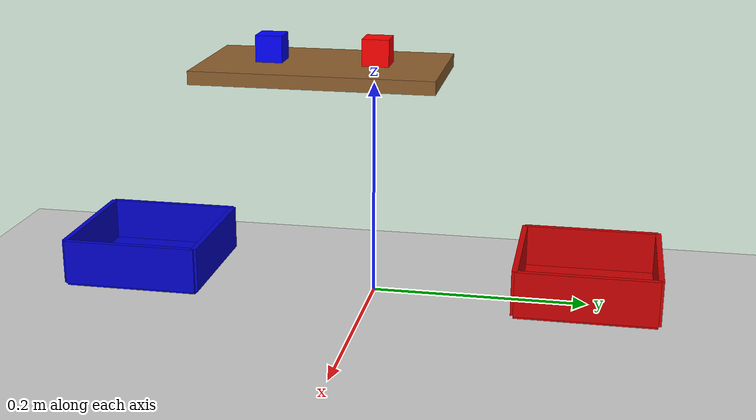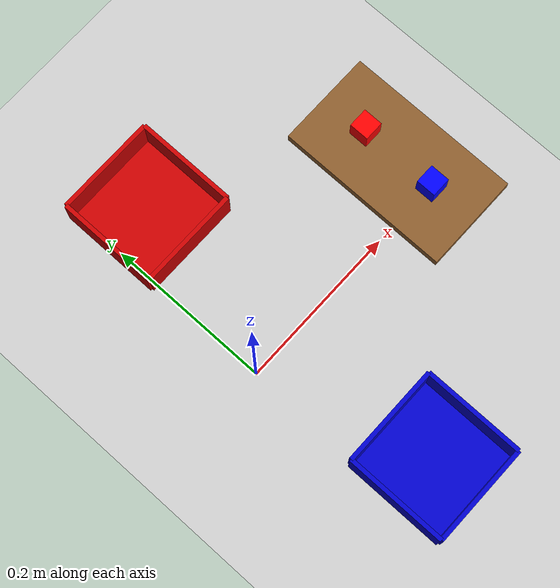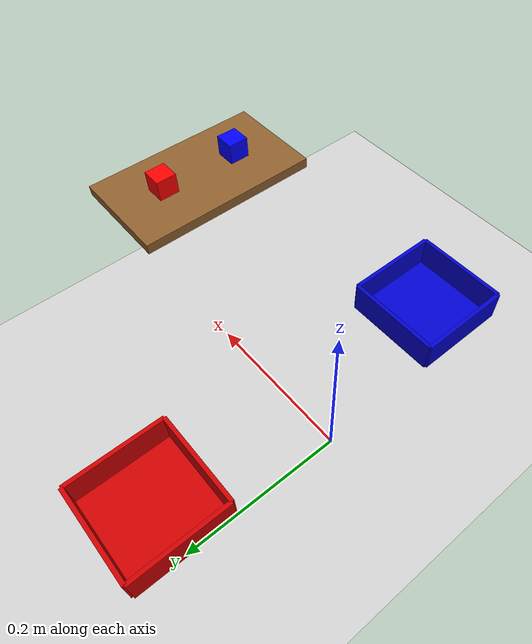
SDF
<?xml version="1.0" ?>
<sdf version="1.7">
  <world name="braccio_sorting_world">

    <plugin filename="gz-sim-sensors-system" name="gz::sim::systems::Sensors">
      <render_engine>ogre2</render_engine>
    </plugin>
    <plugin filename="gz-sim-physics-system" name="gz::sim::systems::Physics">
      <engine>
        <filename>libgz-physics-bullet-featherstone-plugin.so</filename>
      </engine>
    </plugin>
    <plugin filename="gz-sim-user-commands-system" name="gz::sim::systems::UserCommands"/>
    <plugin filename="gz-sim-scene-broadcaster-system" name="gz::sim::systems::SceneBroadcaster"/>
    <plugin filename="gz-sim-imu-system" name="gz::sim::systems::Imu"/>

    <gravity>0.0 0.0 -9.8</gravity>

    <light name="sun" type="directional">
      <pose>0 0 10 0 0 0</pose>
      <cast_shadows>true</cast_shadows>
      <intensity>1.0</intensity>
      <direction>0 0 -1</direction>
      <diffuse>1.0 1.0 1.0 1</diffuse>
      <specular>0.5 0.5 0.5 1</specular>
    </light>

    <light name="ambient_light" type="directional">
      <pose>1 1 5 0 0 0</pose>
      <cast_shadows>false</cast_shadows>
      <intensity>0.5</intensity>
      <direction>-0.5 -0.5 -1</direction>
      <diffuse>0.8 0.8 0.8 1</diffuse>
      <specular>0.2 0.2 0.2 1</specular>
    </light>

    <model name="ground_plane">
      <static>true</static>
      <link name="link">
        <collision name="collision">
          <geometry><plane><normal>0 0 1</normal></plane></geometry>
        </collision>
        <visual name="visual">
          <geometry><plane><normal>0 0 1</normal><size>100 100</size></plane></geometry>
          <material>
            <ambient>0.8 0.8 0.8 1</ambient>
            <diffuse>0.8 0.8 0.8 1</diffuse>
          </material>
        </visual>
      </link>
    </model>

    <!-- Table top at z = 0.255 + 0.005 = 0.260 -->
    <model name="cube_table">
      <static>true</static>
      <pose>0.20 0.00 0.255 0 0 0</pose>
      <link name="link">
        <collision name="collision">
          <geometry><box><size>0.10 0.18 0.01</size></box></geometry>
        </collision>
        <visual name="visual">
          <geometry><box><size>0.10 0.18 0.01</size></box></geometry>
          <material>
            <ambient>0.55 0.37 0.18 1</ambient>
            <diffuse>0.55 0.37 0.18 1</diffuse>
            <specular>0.05 0.05 0.05 1</specular>
          </material>
        </visual>
      </link>
    </model>

    <!-- Red cube: table top 0.260 + half-height 0.01 = 0.27 -->
    <model name="red_cube_1">
      <pose>0.20 0.04 0.27 0 0 0</pose>
      <link name="link">
        <inertial>
          <mass>0.05</mass>
          <inertia>
            <ixx>0.000001</ixx><iyy>0.000001</iyy><izz>0.000001</izz>
          </inertia>
        </inertial>
        <collision name="collision">
          <geometry><box><size>0.02 0.02 0.02</size></box></geometry>
        </collision>
        <visual name="visual">
          <geometry><box><size>0.02 0.02 0.02</size></box></geometry>
          <material>
            <ambient>1 0 0 1</ambient>
            <diffuse>1 0 0 1</diffuse>
            <specular>0.5 0.5 0.5 1</specular>
          </material>
        </visual>
      </link>
    </model>

    <!-- Blue cube: same surface, offset -Y -->
    <model name="blue_cube_2">
      <pose>0.20 -0.04 0.27 0 0 0</pose>
      <link name="link">
        <inertial>
          <mass>0.05</mass>
          <inertia>
            <ixx>0.000001</ixx><iyy>0.000001</iyy><izz>0.000001</izz>
          </inertia>
        </inertial>
        <collision name="collision">
          <geometry><box><size>0.02 0.02 0.02</size></box></geometry>
        </collision>
        <visual name="visual">
          <geometry><box><size>0.02 0.02 0.02</size></box></geometry>
          <material>
            <ambient>0 0 1 1</ambient>
            <diffuse>0 0 1 1</diffuse>
            <specular>0.5 0.5 0.5 1</specular>
          </material>
        </visual>
      </link>
    </model>

    <model name="red_container">
      <pose>0.05 0.20 0.03 0 0 0</pose>
      <static>true</static>
      <link name="link">
        <visual name="base">
          <pose>0 0 0 0 0 0</pose>
          <geometry><box><size>0.12 0.12 0.005</size></box></geometry>
          <material><ambient>0.8 0 0 1</ambient><diffuse>0.8 0 0 1</diffuse></material>
        </visual>
        <visual name="wall_front">
          <pose>0.06 0 0.02 0 0 0</pose>
          <geometry><box><size>0.005 0.12 0.04</size></box></geometry>
          <material><ambient>0.8 0 0 1</ambient><diffuse>0.8 0 0 1</diffuse></material>
        </visual>
        <visual name="wall_back">
          <pose>-0.06 0 0.02 0 0 0</pose>
          <geometry><box><size>0.005 0.12 0.04</size></box></geometry>
          <material><ambient>0.8 0 0 1</ambient><diffuse>0.8 0 0 1</diffuse></material>
        </visual>
        <visual name="wall_left">
          <pose>0 0.06 0.02 0 0 0</pose>
          <geometry><box><size>0.12 0.005 0.04</size></box></geometry>
          <material><ambient>0.8 0 0 1</ambient><diffuse>0.8 0 0 1</diffuse></material>
        </visual>
        <visual name="wall_right">
          <pose>0 -0.06 0.02 0 0 0</pose>
          <geometry><box><size>0.12 0.005 0.04</size></box></geometry>
          <material><ambient>0.8 0 0 1</ambient><diffuse>0.8 0 0 1</diffuse></material>
        </visual>
        <collision name="base_collision">
          <geometry><box><size>0.12 0.12 0.005</size></box></geometry>
        </collision>
      </link>
    </model>

    <model name="blue_container">
      <pose>0.05 -0.20 0.03 0 0 0</pose>
      <static>true</static>
      <link name="link">
        <visual name="base">
          <pose>0 0 0 0 0 0</pose>
          <geometry><box><size>0.12 0.12 0.005</size></box></geometry>
          <material><ambient>0 0 0.8 1</ambient><diffuse>0 0 0.8 1</diffuse></material>
        </visual>
        <visual name="wall_front">
          <pose>0.06 0 0.02 0 0 0</pose>
          <geometry><box><size>0.005 0.12 0.04</size></box></geometry>
          <material><ambient>0 0 0.8 1</ambient><diffuse>0 0 0.8 1</diffuse></material>
        </visual>
        <visual name="wall_back">
          <pose>-0.06 0 0.02 0 0 0</pose>
          <geometry><box><size>0.005 0.12 0.04</size></box></geometry>
          <material><ambient>0 0 0.8 1</ambient><diffuse>0 0 0.8 1</diffuse></material>
        </visual>
        <visual name="wall_left">
          <pose>0 0.06 0.02 0 0 0</pose>
          <geometry><box><size>0.12 0.005 0.04</size></box></geometry>
          <material><ambient>0 0 0.8 1</ambient><diffuse>0 0 0.8 1</diffuse></material>
        </visual>
        <visual name="wall_right">
          <pose>0 -0.06 0.02 0 0 0</pose>
          <geometry><box><size>0.12 0.005 0.04</size></box></geometry>
          <material><ambient>0 0 0.8 1</ambient><diffuse>0 0 0.8 1</diffuse></material>
        </visual>
        <collision name="base_collision">
          <geometry><box><size>0.12 0.12 0.005</size></box></geometry>
        </collision>
      </link>
    </model>

  </world>
</sdf>
